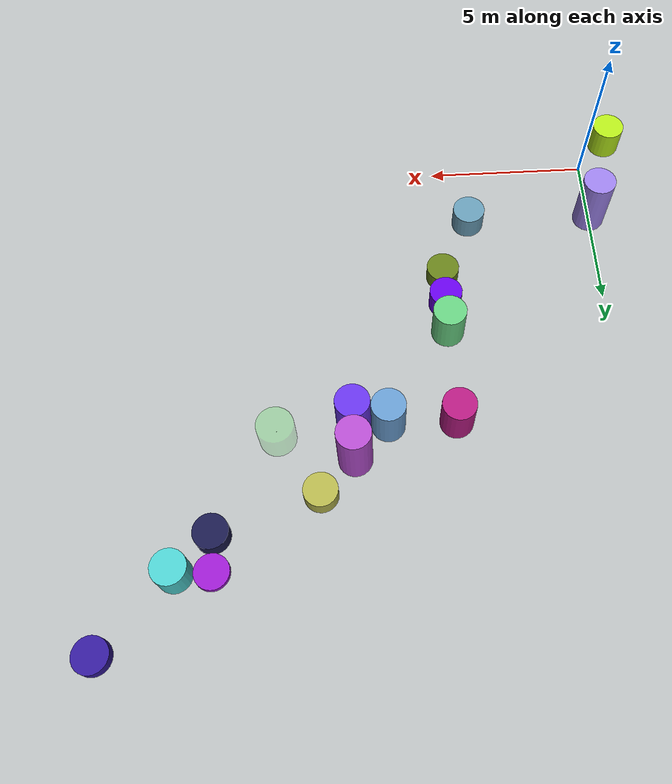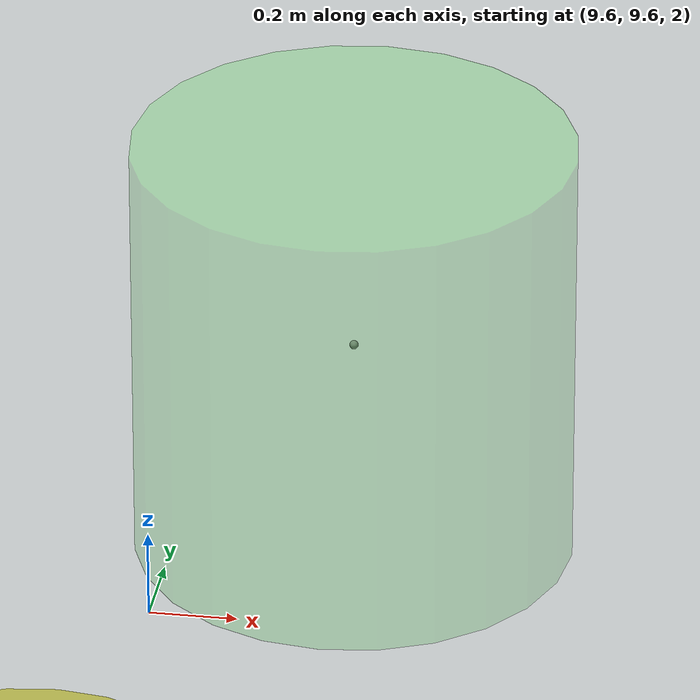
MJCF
<?xml version="1.0" ?>
<mujoco model="objects">
  <worldbody>
    <body name="object1" pos="-1.0 -1.0 0.5" euler="0 0 0">
      <inertial pos="0 0 0" mass="5.0" diaginertia="0.01 0.01 0.01"/>
      <joint type="free"/>
      <geom type="cylinder" size="0.5 0.5" rgba="0.7 0.9 0.1 1"/>
      <site name="object1_site" pos="0 0 0" quat="1 0 0 0" size="0.01"/>
    </body>
    <body name="object2" pos="0.0 2.0 1.0" euler="0 0 0">
      <inertial pos="0 0 0" mass="5.0" diaginertia="0.01 0.01 0.01"/>
      <joint type="free"/>
      <geom type="cylinder" size="0.5 1.0" rgba="0.6 0.5 0.9 1"/>
      <site name="object2_site" pos="0 0 0" quat="1 0 0 0" size="0.01"/>
    </body>
    <body name="object3" pos="4.0 2.0 0.4" euler="0 0 0">
      <inertial pos="0 0 0" mass="7.0" diaginertia="0.01 0.01 0.01"/>
      <joint type="free"/>
      <geom type="cylinder" size="0.5 0.4" rgba="0.4 0.6 0.7 1"/>
      <site name="object3_site" pos="0 0 0" quat="1 0 0 0" size="0.01"/>
    </body>
    <body name="object4" pos="5.0 4.0 0.3" euler="0 0 0">
      <inertial pos="0 0 0" mass="9.0" diaginertia="0.01 0.01 0.01"/>
      <joint type="free"/>
      <geom type="cylinder" size="0.5 0.3" rgba="0.4 0.5 0.1 1"/>
      <site name="object4_site" pos="0 0 0" quat="1 0 0 0" size="0.01"/>
    </body>
    <body name="object5" pos="5.0 5.0 0.4" euler="0 0 0">
      <inertial pos="0 0 0" mass="2.0" diaginertia="0.01 0.01 0.01"/>
      <joint type="free"/>
      <geom type="cylinder" size="0.5 0.4" rgba="0.4 0.0 0.9 1"/>
      <site name="object5_site" pos="0 0 0" quat="1 0 0 0" size="0.01"/>
    </body>
    <body name="object6" pos="5.0 6.0 0.7" euler="0 0 0">
      <inertial pos="0 0 0" mass="10.0" diaginertia="0.01 0.01 0.01"/>
      <joint type="free"/>
      <geom type="cylinder" size="0.5 0.7" rgba="0.4 0.8 0.5 1"/>
      <site name="object6_site" pos="0 0 0" quat="1 0 0 0" size="0.01"/>
    </body>
    <body name="object7" pos="5.0 9.0 0.7" euler="0 0 0">
      <inertial pos="0 0 0" mass="5.0" diaginertia="0.01 0.01 0.01"/>
      <joint type="free"/>
      <geom type="cylinder" size="0.5 0.7" rgba="0.7 0.1 0.5 1"/>
      <site name="object7_site" pos="0 0 0" quat="1 0 0 0" size="0.01"/>
    </body>
    <body name="object8" pos="8.0 9.0 1.0" euler="0 0 0">
      <inertial pos="0 0 0" mass="10.0" diaginertia="0.01 0.01 0.01"/>
      <joint type="free"/>
      <geom type="cylinder" size="0.5 1.0" rgba="0.4 0.2 0.9 1"/>
      <site name="object8_site" pos="0 0 0" quat="1 0 0 0" size="0.01"/>
    </body>
    <body name="object9" pos="7.0 9.0 0.8" euler="0 0 0">
      <inertial pos="0 0 0" mass="9.0" diaginertia="0.01 0.01 0.01"/>
      <joint type="free"/>
      <geom type="cylinder" size="0.5 0.8" rgba="0.4 0.6 0.8 1"/>
      <site name="object9_site" pos="0 0 0" quat="1 0 0 0" size="0.01"/>
    </body>
    <body name="object10" pos="8.0 10.0 1.1" euler="0 0 0">
      <inertial pos="0 0 0" mass="7.0" diaginertia="0.01 0.01 0.01"/>
      <joint type="free"/>
      <geom type="cylinder" size="0.5 1.1" rgba="0.7 0.3 0.8 1"/>
      <site name="object10_site" pos="0 0 0" quat="1 0 0 0" size="0.01"/>
    </body>
    <body name="object11" pos="9.0 11.0 0.3" euler="0 0 0">
      <inertial pos="0 0 0" mass="1.0" diaginertia="0.01 0.01 0.01"/>
      <joint type="free"/>
      <geom type="cylinder" size="0.5 0.3" rgba="0.7 0.7 0.3 1"/>
      <site name="object11_site" pos="0 0 0" quat="1 0 0 0" size="0.01"/>
    </body>
    <body name="object12" pos="12.0 13.0 0.1" euler="0 0 0">
      <inertial pos="0 0 0" mass="5.0" diaginertia="0.01 0.01 0.01"/>
      <joint type="free"/>
      <geom type="cylinder" size="0.5 0.1" rgba="0.6 0.1 0.8 1"/>
      <site name="object12_site" pos="0 0 0" quat="1 0 0 0" size="0.01"/>
    </body>
    <body name="object13" pos="12.0 12.0 0.3" euler="0 0 0">
      <inertial pos="0 0 0" mass="5.0" diaginertia="0.01 0.01 0.01"/>
      <joint type="free"/>
      <geom type="cylinder" size="0.5 0.3" rgba="0.1 0.1 0.3 1"/>
      <site name="object13_site" pos="0 0 0" quat="1 0 0 0" size="0.01"/>
    </body>
    <body name="object14" pos="15.0 15.0 0.2" euler="0 0 0">
      <inertial pos="0 0 0" mass="7.0" diaginertia="0.01 0.01 0.01"/>
      <joint type="free"/>
      <geom type="cylinder" size="0.5 0.2" rgba="0.2 0.1 0.6 1"/>
      <site name="object14_site" pos="0 0 0" quat="1 0 0 0" size="0.01"/>
    </body>
    <body name="object15" pos="13.0 13.0 0.5" euler="0 0 0">
      <inertial pos="0 0 0" mass="3.0" diaginertia="0.01 0.01 0.01"/>
      <joint type="free"/>
      <geom type="cylinder" size="0.5 0.5" rgba="0.3 0.8 0.8 1"/>
      <site name="object15_site" pos="0 0 0" quat="1 0 0 0" size="0.01"/>
    </body>
    <body name="goal" pos="10 10 2.5" euler="0 0 0">
      <geom type="cylinder" size="0.5 0.5" rgba="0.1 0.9 0.1 0.1"/>
      <site name="goal_site" pos="0 0 0" quat="1 0 0 0" size="0.01"/>
    </body>
  </worldbody>
  <sensor>
    <framepos name="object1_pos" objtype="site" objname="object1_site"/>
    <framepos name="object2_pos" objtype="site" objname="object2_site"/>
    <framepos name="object3_pos" objtype="site" objname="object3_site"/>
    <framepos name="object4_pos" objtype="site" objname="object4_site"/>
    <framepos name="object5_pos" objtype="site" objname="object5_site"/>
    <framepos name="object6_pos" objtype="site" objname="object6_site"/>
    <framepos name="object7_pos" objtype="site" objname="object7_site"/>
    <framepos name="object8_pos" objtype="site" objname="object8_site"/>
    <framepos name="object9_pos" objtype="site" objname="object9_site"/>
    <framepos name="object10_pos" objtype="site" objname="object10_site"/>
    <framepos name="object11_pos" objtype="site" objname="object11_site"/>
    <framepos name="object12_pos" objtype="site" objname="object12_site"/>
    <framepos name="object13_pos" objtype="site" objname="object13_site"/>
    <framepos name="object14_pos" objtype="site" objname="object14_site"/>
    <framepos name="object15_pos" objtype="site" objname="object15_site"/>
    <framepos name="goal_pos" objtype="site" objname="goal_site"/>
  </sensor>
</mujoco>
